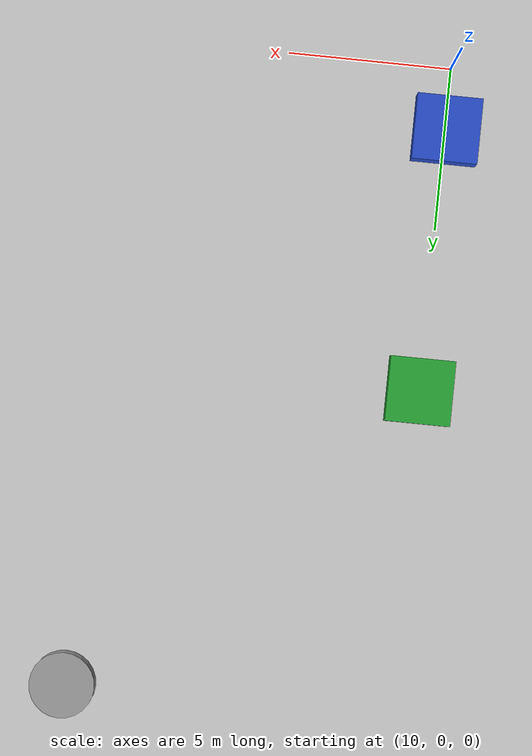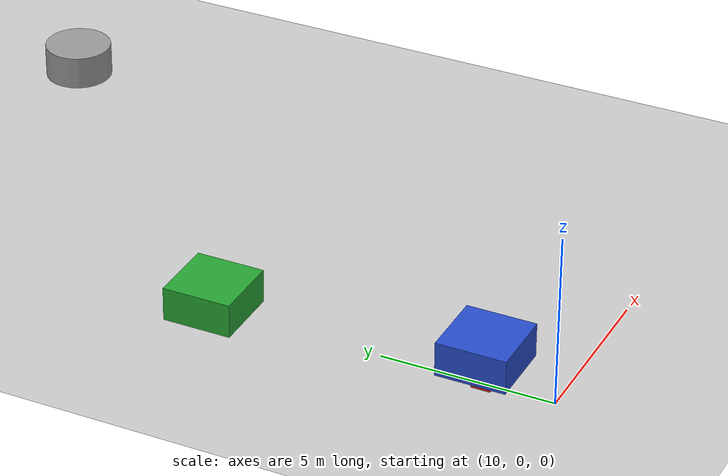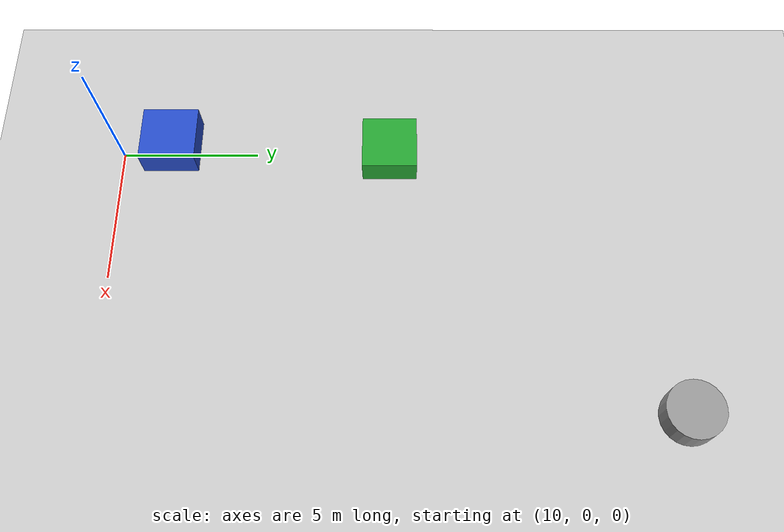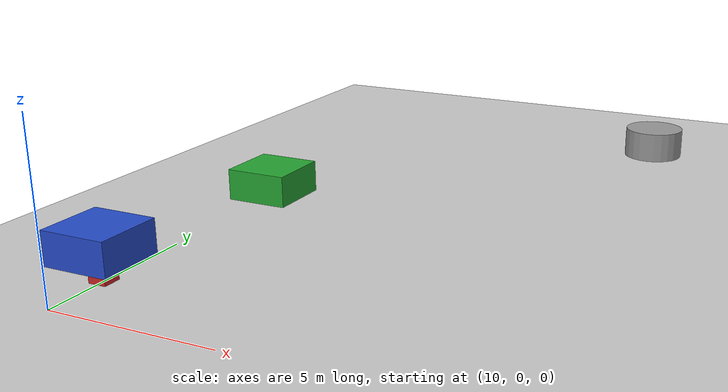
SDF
<?xml version="1.0"?>
<sdf version="1.6">
  <world name="default">
    <plugin name="gazebo_ros_state" filename="libgazebo_ros_state.so">
      <ros>
        <namespace>/demo</namespace>
        <remapping>model_states:=model_states_demo</remapping>
        <remapping>link_states:=link_states_demo</remapping>
      </ros>
      <update_rate>10.0</update_rate>
    </plugin>

    <include>
      <uri>model://ground_plane</uri>
    </include>
    <include>
      <uri>model://sun</uri>
    </include>

<!-- Replace the existing 'boxes' model with these two separate models -->

<model name='box1'>
  <pose>10 2 0.275 0 0 0</pose> <!-- Bottom box positioned at half its height -->

  <link name='box1'>
    <visual name='visual'>
      <geometry>
        <box>
          <size>0.55 0.55 0.55</size>
        </box>
      </geometry>
      <material>
        <script>
          <name>Gazebo/Red</name>
          <uri>file://media/materials/scripts/gazebo.material</uri>
        </script>
      </material>
    </visual>
    <collision name='collision'>
      <geometry>
        <box>
          <size>0.55 0.55 0.55</size>
        </box>
      </geometry>
    </collision>
    <inertial>
      <mass>1.0</mass>
      <inertia>
        <ixx>0.050458</ixx>
        <ixy>0</ixy>
        <ixz>0</ixz>
        <iyy>0.050458</iyy>
        <iyz>0</iyz>
        <izz>0.050458</izz>
      </inertia>
    </inertial>
  </link>
</model>

<model name='box2'>
  <pose>10 2 1.1 0 0 0</pose> <!-- Top box positioned above Box1 -->

  <link name='box2'>
    <visual name='visual'>
      <geometry>
        <box>
          <size>2.0 2.0 1.0</size> <!-- Made collision and visual sizes consistent -->
        </box>
      </geometry>
      <material>
        <script>
          <name>Gazebo/Blue</name>
          <uri>file://media/materials/scripts/gazebo.material</uri>
        </script>
      </material>
    </visual>
    <collision name='collision'>
      <geometry>
        <box>
          <size>2.0 2.0 1.0</size>
        </box>
      </geometry>
    </collision>
    <inertial>
      <mass>1.0</mass>
      <inertia>
        <ixx>0.166667</ixx>
        <ixy>0</ixy>
        <ixz>0</ixz>
        <iyy>0.166667</iyy>
        <iyz>0</iyz>
        <izz>0.166667</izz>
      </inertia>
    </inertial>
  </link>
</model>

<model name='box3'>
  <pose>10 10 0.5 0 0 0</pose> <!-- Top box positioned above Box1 -->

  <link name='box3'>
    <visual name='visual'>
      <geometry>
        <box>
          <size>2.0 2.0 1.0</size> <!-- Made collision and visual sizes consistent -->
        </box>
      </geometry>
      <material>
        <script>
          <name>Gazebo/Green</name>
          <uri>file://media/materials/scripts/gazebo.material</uri>
        </script>
      </material>
    </visual>
    <collision name='collision'>
      <geometry>
        <box>
          <size>2.0 2.0 1.0</size>
        </box>
      </geometry>
    </collision>
    <inertial>
      <mass>1.0</mass>
      <inertia>
        <ixx>0.166667</ixx>
        <ixy>0</ixy>
        <ixz>0</ixz>
        <iyy>0.166667</iyy>
        <iyz>0</iyz>
        <izz>0.166667</izz>
      </inertia>
    </inertial>
  </link>
</model>

    <model name='crash_dummy'>
      <pose>20.0 20.0 0.5 0 -0 0</pose>
      <link name='link'>
        <inertial>
          <mass>1</mass>
          <inertia>
            <ixx>0.145833</ixx>
            <ixy>0</ixy>
            <ixz>0</ixz>
            <iyy>0.145833</iyy>
            <iyz>0</iyz>
            <izz>0.125</izz>
          </inertia>
          <pose>0 0 0 0 -0 0</pose>
        </inertial>
        <collision name='collision'>
          <geometry>
            <cylinder>
              <radius>0.5</radius>
              <length>1</length>
            </cylinder>
          </geometry>
          <max_contacts>10</max_contacts>
          <surface>
            <contact>
              <ode/>
            </contact>
            <bounce/>
            <friction>
              <torsional>
                <ode/>
              </torsional>
              <ode/>
            </friction>
          </surface>
        </collision>
        <visual name='visual'>
          <geometry>
            <cylinder>
              <radius>1.0</radius>
              <length>1.0</length>
            </cylinder>
          </geometry>
          <material>
            <script>
              <name>Gazebo/Grey</name>
              <uri>file://media/materials/scripts/gazebo.material</uri>
            </script>
          </material>
        </visual>
        <self_collide>0</self_collide>
        <enable_wind>0</enable_wind>
        <kinematic>0</kinematic>
      </link>
    </model>

    <gui fullscreen='0'>
      <camera name='user_camera'>
        <pose>-30.7614 1.32089 33.8068 0 0.655644 0.025013</pose>
        <view_controller>orbit</view_controller>
        <projection_type>perspective</projection_type>
      </camera>
    </gui>

  </world>
</sdf>
